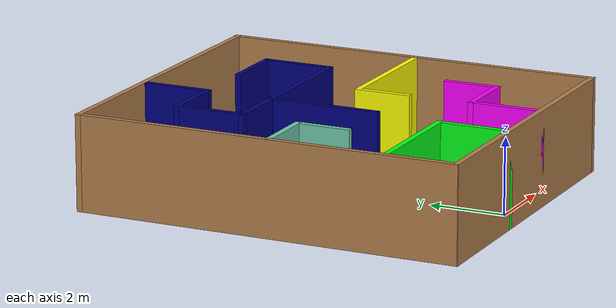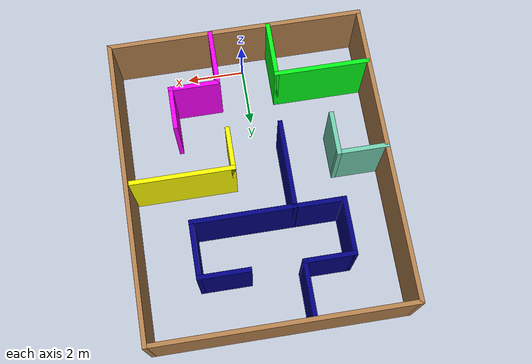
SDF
<?xml version='1.0'?>
<sdf version='1.6'>
  <model name='MazeColor'>
    <pose frame=''>0.145817 4.56157 0 0 -0 0</pose>
    <link name='Wall_0'>
      <collision name='Wall_0_Collision'>
        <geometry>
          <box>
            <size>10.25 0.15 2.5</size>
          </box>
        </geometry>
        <pose frame=''>0 0 1.25 0 -0 0</pose>
      </collision>
      <visual name='Wall_0_Visual'>
        <pose frame=''>0 0 1.25 0 -0 0</pose>
        <geometry>
          <box>
            <size>10.25 0.15 2.5</size>
          </box>
        </geometry>
        <material>
          <script>
            <uri>file://media/materials/scripts/gazebo.material</uri>
            <name>Gazebo/Wood</name>
          </script>
          <ambient>1 1 1 1</ambient>
        </material>
        <meta>
          <layer>0</layer>
        </meta>
      </visual>
      <pose frame=''>-4.3 0.011565 0 0 -0 -1.5708</pose>
    </link>
    <link name='Wall_1'>
      <collision name='Wall_1_Collision'>
        <geometry>
          <box>
            <size>8.75 0.15 2.5</size>
          </box>
        </geometry>
        <pose frame=''>0 0 1.25 0 -0 0</pose>
      </collision>
      <visual name='Wall_1_Visual'>
        <pose frame=''>0 0 1.25 0 -0 0</pose>
        <geometry>
          <box>
            <size>8.75 0.15 2.5</size>
          </box>
        </geometry>
        <material>
          <script>
            <uri>file://media/materials/scripts/gazebo.material</uri>
            <name>Gazebo/Wood</name>
          </script>
          <ambient>1 1 1 1</ambient>
        </material>
        <meta>
          <layer>0</layer>
        </meta>
      </visual>
      <pose frame=''>-0 -5.06157 0 0 -0 0</pose>
    </link>
    <link name='Wall_11'>
      <collision name='Wall_11_Collision'>
        <geometry>
          <box>
            <size>3.5 0.15 2.5</size>
          </box>
        </geometry>
        <pose frame=''>0 0 1.25 0 -0 0</pose>
      </collision>
      <visual name='Wall_11_Visual'>
        <pose frame=''>0 0 1.25 0 -0 0</pose>
        <geometry>
          <box>
            <size>3.5 0.15 2.5</size>
          </box>
        </geometry>
        <material>
          <script>
            <uri>file://media/materials/scripts/gazebo.material</uri>
            <name>Gazebo/Grey</name>
          </script>
          <ambient>0 0 0.498039 1</ambient>
        </material>
        <meta>
          <layer>0</layer>
        </meta>
      </visual>
      <pose frame=''>0.713183 1.43843 0 0 -0 3.14159</pose>
    </link>
    <link name='Wall_14'>
      <collision name='Wall_14_Collision'>
        <geometry>
          <box>
            <size>1.5 0.15 2.5</size>
          </box>
        </geometry>
        <pose frame=''>0 0 1.25 0 -0 0</pose>
      </collision>
      <visual name='Wall_14_Visual'>
        <pose frame=''>0 0 1.25 0 -0 0</pose>
        <geometry>
          <box>
            <size>1.5 0.15 2.5</size>
          </box>
        </geometry>
        <material>
          <script>
            <uri>file://media/materials/scripts/gazebo.material</uri>
            <name>Gazebo/Grey</name>
          </script>
          <ambient>0.435294 0.796078 0.67451 1</ambient>
        </material>
        <meta>
          <layer>0</layer>
        </meta>
      </visual>
      <pose frame=''>-2.69715 -0.807102 0 0 -0 1.5708</pose>
    </link>
    <link name='Wall_16'>
      <collision name='Wall_16_Collision'>
        <geometry>
          <box>
            <size>1.75 0.15 2.5</size>
          </box>
        </geometry>
        <pose frame=''>0 0 1.25 0 -0 0</pose>
      </collision>
      <visual name='Wall_16_Visual'>
        <pose frame=''>0 0 1.25 0 -0 0</pose>
        <geometry>
          <box>
            <size>1.75 0.15 2.5</size>
          </box>
        </geometry>
        <material>
          <script>
            <uri>file://media/materials/scripts/gazebo.material</uri>
            <name>Gazebo/Grey</name>
          </script>
          <ambient>0.435294 0.796078 0.67451 1</ambient>
        </material>
        <meta>
          <layer>0</layer>
        </meta>
      </visual>
      <pose frame=''>-3.49715 -0.132102 0 0 -0 3.14159</pose>
    </link>
    <link name='Wall_18'>
      <collision name='Wall_18_Collision'>
        <geometry>
          <box>
            <size>3.03 0.15 2.5</size>
          </box>
        </geometry>
        <pose frame=''>0 0 1.25 0 -0 0</pose>
      </collision>
      <visual name='Wall_18_Visual'>
        <pose frame=''>0 0 1.25 0 -0 0</pose>
        <geometry>
          <box>
            <size>3.03 0.15 2.5</size>
          </box>
        </geometry>
        <material>
          <script>
            <uri>file://media/materials/scripts/gazebo.material</uri>
            <name>Gazebo/Grey</name>
          </script>
          <ambient>0 0 0.498039 1</ambient>
        </material>
        <meta>
          <layer>0</layer>
        </meta>
      </visual>
      <pose frame=''>-0.972817 -0.001566 0 0 -0 1.5708</pose>
    </link>
    <link name='Wall_2'>
      <collision name='Wall_2_Collision'>
        <geometry>
          <box>
            <size>10.2733 0.15 2.5</size>
          </box>
        </geometry>
        <pose frame=''>0 0 1.25 0 -0 0</pose>
      </collision>
      <visual name='Wall_2_Visual'>
        <pose frame=''>0 0 1.25 0 -0 0</pose>
        <geometry>
          <box>
            <size>10.2733 0.15 2.5</size>
          </box>
        </geometry>
        <material>
          <script>
            <uri>file://media/materials/scripts/gazebo.material</uri>
            <name>Gazebo/Wood</name>
          </script>
          <ambient>1 1 1 1</ambient>
        </material>
        <meta>
          <layer>0</layer>
        </meta>
      </visual>
      <pose frame=''>4.3 -0 0 0 -0 1.5708</pose>
    </link>
    <link name='Wall_21'>
      <collision name='Wall_21_Collision'>
        <geometry>
          <box>
            <size>1.75 0.15 2.5</size>
          </box>
        </geometry>
        <pose frame=''>0 0 1.25 0 -0 0</pose>
      </collision>
      <visual name='Wall_21_Visual'>
        <pose frame=''>0 0 1.25 0 -0 0</pose>
        <geometry>
          <box>
            <size>1.75 0.15 2.5</size>
          </box>
        </geometry>
        <material>
          <script>
            <uri>file://media/materials/scripts/gazebo.material</uri>
            <name>Gazebo/Grey</name>
          </script>
          <ambient>0 0 0.498039 1</ambient>
        </material>
        <meta>
          <layer>0</layer>
        </meta>
      </visual>
      <pose frame=''>-1.77282 1.43843 0 0 -0 3.14159</pose>
    </link>
    <link name='Wall_24'>
      <collision name='Wall_24_Collision'>
        <geometry>
          <box>
            <size>1.95 0.15 2.5</size>
          </box>
        </geometry>
        <pose frame=''>0 0 1.25 0 -0 0</pose>
      </collision>
      <visual name='Wall_24_Visual'>
        <pose frame=''>0 0 1.25 0 -0 0</pose>
        <geometry>
          <box>
            <size>1.95 0.15 2.5</size>
          </box>
        </geometry>
        <material>
          <script>
            <uri>file://media/materials/scripts/gazebo.material</uri>
            <name>Gazebo/Grey</name>
          </script>
          <ambient>0 0 0.498039 1</ambient>
        </material>
        <meta>
          <layer>0</layer>
        </meta>
      </visual>
      <pose frame=''>-2.57282 2.33843 0 0 -0 1.5708</pose>
    </link>
    <link name='Wall_26'>
      <collision name='Wall_26_Collision'>
        <geometry>
          <box>
            <size>1.75212 0.15 2.5</size>
          </box>
        </geometry>
        <pose frame=''>0 0 1.25 0 -0 0</pose>
      </collision>
      <visual name='Wall_26_Visual'>
        <pose frame=''>0 0 1.25 0 -0 0</pose>
        <geometry>
          <box>
            <size>1.75212 0.15 2.5</size>
          </box>
        </geometry>
        <material>
          <script>
            <uri>file://media/materials/scripts/gazebo.material</uri>
            <name>Gazebo/Grey</name>
          </script>
          <ambient>0 0 0.498039 1</ambient>
        </material>
        <meta>
          <layer>0</layer>
        </meta>
      </visual>
      <pose frame=''>-1.77182 3.23843 0 0 -0 0</pose>
    </link>
    <link name='Wall_27'>
      <collision name='Wall_27_Collision'>
        <geometry>
          <box>
            <size>1.8234 0.15 2.5</size>
          </box>
        </geometry>
        <pose frame=''>0 0 1.25 0 -0 0</pose>
      </collision>
      <visual name='Wall_27_Visual'>
        <pose frame=''>0 0 1.25 0 -0 0</pose>
        <geometry>
          <box>
            <size>1.8234 0.15 2.5</size>
          </box>
        </geometry>
        <material>
          <script>
            <uri>file://media/materials/scripts/gazebo.material</uri>
            <name>Gazebo/Grey</name>
          </script>
          <ambient>0 0 0.498039 1</ambient>
        </material>
        <meta>
          <layer>0</layer>
        </meta>
      </visual>
      <pose frame=''>-0.970817 4.07493 0 0 -0 1.5708</pose>
    </link>
    <link name='Wall_29'>
      <collision name='Wall_29_Collision'>
        <geometry>
          <box>
            <size>8.75 0.15 2.5</size>
          </box>
        </geometry>
        <pose frame=''>0 0 1.25 0 -0 0</pose>
      </collision>
      <visual name='Wall_29_Visual'>
        <pose frame=''>0 0 1.25 0 -0 0</pose>
        <geometry>
          <box>
            <size>8.75 0.15 2.5</size>
          </box>
        </geometry>
        <material>
          <script>
            <uri>file://media/materials/scripts/gazebo.material</uri>
            <name>Gazebo/Wood</name>
          </script>
          <ambient>1 1 1 1</ambient>
        </material>
        <meta>
          <layer>0</layer>
        </meta>
      </visual>
      <pose frame=''>-0 5.06156 0 0 -0 0</pose>
    </link>
    <link name='Wall_31'>
      <collision name='Wall_31_Collision'>
        <geometry>
          <box>
            <size>1.5 0.15 2.5</size>
          </box>
        </geometry>
        <pose frame=''>0 0 1.25 0 -0 0</pose>
      </collision>
      <visual name='Wall_31_Visual'>
        <pose frame=''>0 0 1.25 0 -0 0</pose>
        <geometry>
          <box>
            <size>1.5 0.15 2.5</size>
          </box>
        </geometry>
        <material>
          <script>
            <uri>file://media/materials/scripts/gazebo.material</uri>
            <name>Gazebo/Grey</name>
          </script>
          <ambient>1 1 0 1</ambient>
        </material>
        <meta>
          <layer>0</layer>
        </meta>
      </visual>
      <pose frame=''>0.78143 -0.827346 0 0 -0 1.5708</pose>
    </link>
    <link name='Wall_32'>
      <collision name='Wall_32_Collision'>
        <geometry>
          <box>
            <size>3.5 0.15 2.5</size>
          </box>
        </geometry>
        <pose frame=''>0 0 1.25 0 -0 0</pose>
      </collision>
      <visual name='Wall_32_Visual'>
        <pose frame=''>0 0 1.25 0 -0 0</pose>
        <geometry>
          <box>
            <size>3.5 0.15 2.5</size>
          </box>
        </geometry>
        <material>
          <script>
            <uri>file://media/materials/scripts/gazebo.material</uri>
            <name>Gazebo/Grey</name>
          </script>
          <ambient>1 1 0 1</ambient>
        </material>
        <meta>
          <layer>0</layer>
        </meta>
      </visual>
      <pose frame=''>2.45643 -0.152346 0 0 -0 0</pose>
    </link>
    <link name='Wall_34'>
      <collision name='Wall_34_Collision'>
        <geometry>
          <box>
            <size>1.5 0.15 2.5</size>
          </box>
        </geometry>
        <pose frame=''>0 0 1.25 0 -0 0</pose>
      </collision>
      <visual name='Wall_34_Visual'>
        <pose frame=''>0 0 1.25 0 -0 0</pose>
        <geometry>
          <box>
            <size>1.5 0.15 2.5</size>
          </box>
        </geometry>
        <material>
          <script>
            <uri>file://media/materials/scripts/gazebo.material</uri>
            <name>Gazebo/Grey</name>
          </script>
          <ambient>1 0 1 1</ambient>
        </material>
        <meta>
          <layer>0</layer>
        </meta>
      </visual>
      <pose frame=''>2.45418 -2.53657 0 0 -0 1.5708</pose>
    </link>
    <link name='Wall_36'>
      <collision name='Wall_36_Collision'>
        <geometry>
          <box>
            <size>1.95 0.15 2.5</size>
          </box>
        </geometry>
        <pose frame=''>0 0 1.25 0 -0 0</pose>
      </collision>
      <visual name='Wall_36_Visual'>
        <pose frame=''>0 0 1.25 0 -0 0</pose>
        <geometry>
          <box>
            <size>1.95 0.15 2.5</size>
          </box>
        </geometry>
        <material>
          <script>
            <uri>file://media/materials/scripts/gazebo.material</uri>
            <name>Gazebo/Grey</name>
          </script>
          <ambient>0 0 0.498039 1</ambient>
        </material>
        <meta>
          <layer>0</layer>
        </meta>
      </visual>
      <pose frame=''>2.38818 2.33843 0 0 -0 1.5708</pose>
    </link>
    <link name='Wall_37'>
      <collision name='Wall_37_Collision'>
        <geometry>
          <box>
            <size>1.75 0.15 2.5</size>
          </box>
        </geometry>
        <pose frame=''>0 0 1.25 0 -0 0</pose>
      </collision>
      <visual name='Wall_37_Visual'>
        <pose frame=''>0 0 1.25 0 -0 0</pose>
        <geometry>
          <box>
            <size>1.75 0.15 2.5</size>
          </box>
        </geometry>
        <material>
          <script>
            <uri>file://media/materials/scripts/gazebo.material</uri>
            <name>Gazebo/Grey</name>
          </script>
          <ambient>0 0 0.498039 1</ambient>
        </material>
        <meta>
          <layer>0</layer>
        </meta>
      </visual>
      <pose frame=''>1.58818 3.23843 0 0 -0 3.14159</pose>
    </link>
    <link name='Wall_4'>
      <collision name='Wall_4_Collision'>
        <geometry>
          <box>
            <size>3.25 0.15 2.5</size>
          </box>
        </geometry>
        <pose frame=''>0 0 1.25 0 -0 0</pose>
      </collision>
      <visual name='Wall_4_Visual'>
        <pose frame=''>0 0 1.25 0 -0 0</pose>
        <geometry>
          <box>
            <size>3.25 0.15 2.5</size>
          </box>
        </geometry>
        <material>
          <script>
            <uri>file://media/materials/scripts/gazebo.material</uri>
            <name>Gazebo/Grey</name>
          </script>
          <ambient>0.0196078 1 0.0980392 1</ambient>
        </material>
        <meta>
          <layer>0</layer>
        </meta>
      </visual>
      <pose frame=''>-2.69582 -3.21157 0 0 -0 0</pose>
    </link>
    <link name='Wall_5'>
      <collision name='Wall_5_Collision'>
        <geometry>
          <box>
            <size>2 0.15 2.5</size>
          </box>
        </geometry>
        <pose frame=''>0 0 1.25 0 -0 0</pose>
      </collision>
      <visual name='Wall_5_Visual'>
        <pose frame=''>0 0 1.25 0 -0 0</pose>
        <geometry>
          <box>
            <size>2 0.15 2.5</size>
          </box>
        </geometry>
        <material>
          <script>
            <uri>file://media/materials/scripts/gazebo.material</uri>
            <name>Gazebo/Grey</name>
          </script>
          <ambient>0.0196078 1 0.0980392 1</ambient>
        </material>
        <meta>
          <layer>0</layer>
        </meta>
      </visual>
      <pose frame=''>-1.14582 -4.13657 0 0 -0 -1.5708</pose>
    </link>
    <link name='Wall_7'>
      <collision name='Wall_7_Collision'>
        <geometry>
          <box>
            <size>1.75 0.15 2.5</size>
          </box>
        </geometry>
        <pose frame=''>0 0 1.25 0 -0 0</pose>
      </collision>
      <visual name='Wall_7_Visual'>
        <pose frame=''>0 0 1.25 0 -0 0</pose>
        <geometry>
          <box>
            <size>1.75 0.15 2.5</size>
          </box>
        </geometry>
        <material>
          <script>
            <uri>file://media/materials/scripts/gazebo.material</uri>
            <name>Gazebo/Grey</name>
          </script>
          <ambient>1 0 1 1</ambient>
        </material>
        <meta>
          <layer>0</layer>
        </meta>
      </visual>
      <pose frame=''>1.65418 -3.21157 0 0 -0 3.14159</pose>
    </link>
    <link name='Wall_8'>
      <collision name='Wall_8_Collision'>
        <geometry>
          <box>
            <size>2 0.15 2.5</size>
          </box>
        </geometry>
        <pose frame=''>0 0 1.25 0 -0 0</pose>
      </collision>
      <visual name='Wall_8_Visual'>
        <pose frame=''>0 0 1.25 0 -0 0</pose>
        <geometry>
          <box>
            <size>2 0.15 2.5</size>
          </box>
        </geometry>
        <material>
          <script>
            <uri>file://media/materials/scripts/gazebo.material</uri>
            <name>Gazebo/Grey</name>
          </script>
          <ambient>1 0 1 1</ambient>
        </material>
        <meta>
          <layer>0</layer>
        </meta>
      </visual>
      <pose frame=''>0.854183 -4.13657 0 0 -0 -1.5708</pose>
    </link>
    <static>1</static>
  </model>
</sdf>
